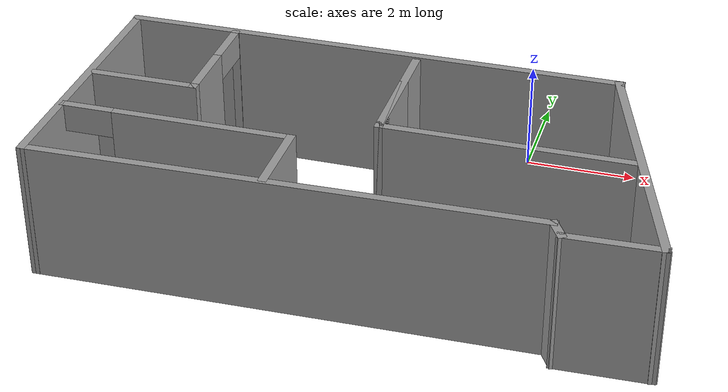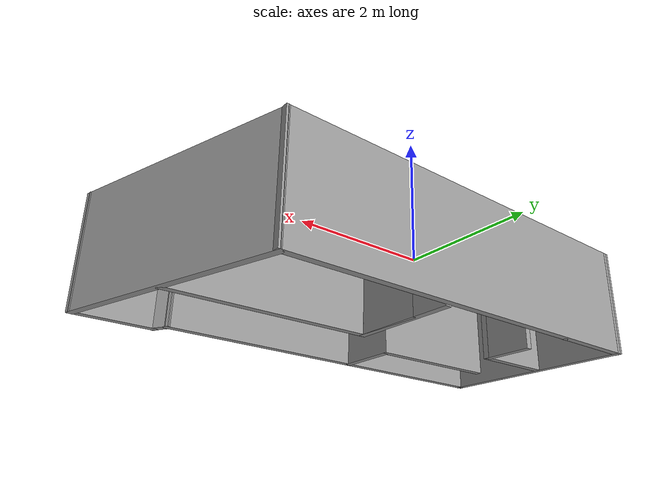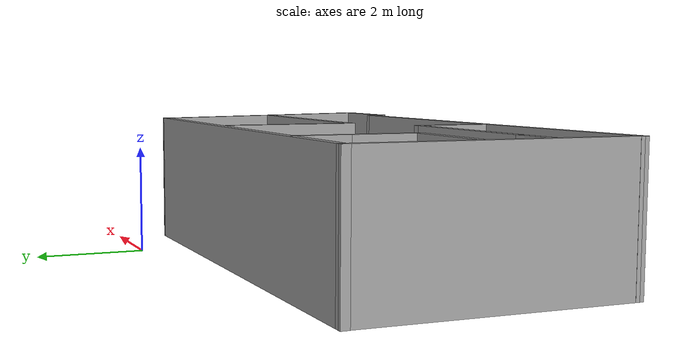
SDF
<?xml version='1.0'?>
<sdf version='1.7'>
  <model name='random_room'>
    <pose>-2.07074 -3.00778 0 0 -0 0</pose>
    <link name='Wall_0'>
      <collision name='Wall_0_Collision'>
        <geometry>
          <box>
            <size>5.23328 0.15 2.5</size>
          </box>
        </geometry>
        <pose>0 0 1.25 0 -0 0</pose>
      </collision>
      <visual name='Wall_0_Visual'>
        <pose>0 0 1.25 0 -0 0</pose>
        <geometry>
          <box>
            <size>5.23328 0.15 2.5</size>
          </box>
        </geometry>
        <material>
          <script>
            <uri>file://media/materials/scripts/gazebo.material</uri>
            <name>Gazebo/Grey</name>
          </script>
          <ambient>1 1 1 1</ambient>
        </material>
        <meta>
          <layer>0</layer>
        </meta>
      </visual>
      <pose>4.51574 -0.42222 0 0 -0 1.86828</pose>
    </link>
    <link name='Wall_1'>
      <collision name='Wall_1_Collision'>
        <geometry>
          <box>
            <size>9.22002 0.15 2.5</size>
          </box>
        </geometry>
        <pose>0 0 1.25 0 -0 0</pose>
      </collision>
      <visual name='Wall_1_Visual'>
        <pose>0 0 1.25 0 -0 0</pose>
        <geometry>
          <box>
            <size>9.22002 0.15 2.5</size>
          </box>
        </geometry>
        <material>
          <script>
            <uri>file://media/materials/scripts/gazebo.material</uri>
            <name>Gazebo/Grey</name>
          </script>
          <ambient>1 1 1 1</ambient>
        </material>
        <meta>
          <layer>0</layer>
        </meta>
      </visual>
      <pose>-0.744262 2.02778 0 0 -0 3.13939</pose>
    </link>
    <link name='Wall_10'>
      <pose>0.150738 0.64278 0 0 -0 -1.5708</pose>
      <visual name='Wall_10_Visual_0'>
        <pose>0 0 1.25 0 -0 0</pose>
        <geometry>
          <box>
            <size>2.5 0.15 2.5</size>
          </box>
        </geometry>
        <material>
          <script>
            <uri>file://media/materials/scripts/gazebo.material</uri>
            <name>Gazebo/Grey</name>
          </script>
          <ambient>1 1 1 1</ambient>
        </material>
        <meta>
          <layer>0</layer>
        </meta>
      </visual>
      <collision name='Wall_10_Collision_0'>
        <geometry>
          <box>
            <size>2.5 0.15 2.5</size>
          </box>
        </geometry>
        <pose>0 0 1.25 0 -0 0</pose>
      </collision>
      <visual name='Wall_10_Visual_1'>
        <pose>0.4275 0 1.25 0 -0 0</pose>
        <geometry>
          <box>
            <size>1.645 0.15 2.5</size>
          </box>
        </geometry>
        <material>
          <script>
            <uri>file://media/materials/scripts/gazebo.material</uri>
            <name>Gazebo/Grey</name>
          </script>
          <ambient>1 1 1 1</ambient>
        </material>
        <meta>
          <layer>0</layer>
        </meta>
      </visual>
      <collision name='Wall_10_Collision_1'>
        <geometry>
          <box>
            <size>1.645 0.15 2.5</size>
          </box>
        </geometry>
        <pose>0.4275 0 1.25 0 -0 0</pose>
      </collision>
    </link>
    <link name='Wall_11'>
      <collision name='Wall_11_Collision'>
        <geometry>
          <box>
            <size>4.5 0.15 2.5</size>
          </box>
        </geometry>
        <pose>0 0 1.25 0 -0 0</pose>
      </collision>
      <visual name='Wall_11_Visual'>
        <pose>0 0 1.25 0 -0 0</pose>
        <geometry>
          <box>
            <size>4.5 0.15 2.5</size>
          </box>
        </geometry>
        <material>
          <script>
            <uri>file://media/materials/scripts/gazebo.material</uri>
            <name>Gazebo/Grey</name>
          </script>
          <ambient>1 1 1 1</ambient>
        </material>
        <meta>
          <layer>0</layer>
        </meta>
      </visual>
      <pose>2.32574 -0.53222 0 0 -0 0</pose>
    </link>
    <link name='Wall_13'>
      <pose>-3.19926 -1.31222 0 0 -0 0</pose>
      <visual name='Wall_13_Visual_0'>
        <pose>-2.0725 0 1.25 0 -0 0</pose>
        <geometry>
          <box>
            <size>0.105 0.15 2.5</size>
          </box>
        </geometry>
        <material>
          <script>
            <uri>file://media/materials/scripts/gazebo.material</uri>
            <name>Gazebo/Grey</name>
          </script>
          <ambient>1 1 1 1</ambient>
        </material>
        <meta>
          <layer>0</layer>
        </meta>
      </visual>
      <collision name='Wall_13_Collision_0'>
        <geometry>
          <box>
            <size>0.105 0.15 2.5</size>
          </box>
        </geometry>
        <pose>-2.0725 0 1.25 0 -0 0</pose>
      </collision>
      <visual name='Wall_13_Visual_1'>
        <pose>0.5025 0 1.25 0 -0 0</pose>
        <geometry>
          <box>
            <size>3.245 0.15 2.5</size>
          </box>
        </geometry>
        <material>
          <script>
            <uri>file://media/materials/scripts/gazebo.material</uri>
            <name>Gazebo/Grey</name>
          </script>
          <ambient>1 1 1 1</ambient>
        </material>
        <meta>
          <layer>0</layer>
        </meta>
      </visual>
      <collision name='Wall_13_Collision_1'>
        <geometry>
          <box>
            <size>3.245 0.15 2.5</size>
          </box>
        </geometry>
        <pose>0.5025 0 1.25 0 -0 0</pose>
      </collision>
      <visual name='Wall_13_Visual_2'>
        <pose>-1.57 0 2.25 0 -0 0</pose>
        <geometry>
          <box>
            <size>0.9 0.15 0.5</size>
          </box>
        </geometry>
        <material>
          <script>
            <uri>file://media/materials/scripts/gazebo.material</uri>
            <name>Gazebo/Grey</name>
          </script>
          <ambient>1 1 1 1</ambient>
        </material>
        <meta>
          <layer>0</layer>
        </meta>
      </visual>
      <collision name='Wall_13_Collision_2'>
        <geometry>
          <box>
            <size>0.9 0.15 0.5</size>
          </box>
        </geometry>
        <pose>-1.57 0 2.25 0 -0 0</pose>
      </collision>
    </link>
    <link name='Wall_14'>
      <collision name='Wall_14_Collision'>
        <geometry>
          <box>
            <size>1.5 0.15 2.5</size>
          </box>
        </geometry>
        <pose>0 0 1.25 0 -0 0</pose>
      </collision>
      <visual name='Wall_14_Visual'>
        <pose>0 0 1.25 0 -0 0</pose>
        <geometry>
          <box>
            <size>1.5 0.15 2.5</size>
          </box>
        </geometry>
        <material>
          <script>
            <uri>file://media/materials/scripts/gazebo.material</uri>
            <name>Gazebo/Grey</name>
          </script>
          <ambient>1 1 1 1</ambient>
        </material>
        <meta>
          <layer>0</layer>
        </meta>
      </visual>
      <pose>-1.14926 -1.98722 0 0 -0 -1.5708</pose>
    </link>
    <link name='Wall_2'>
      <collision name='Wall_2_Collision'>
        <geometry>
          <box>
            <size>5 0.15 2.5</size>
          </box>
        </geometry>
        <pose>0 0 1.25 0 -0 0</pose>
      </collision>
      <visual name='Wall_2_Visual'>
        <pose>0 0 1.25 0 -0 0</pose>
        <geometry>
          <box>
            <size>5 0.15 2.5</size>
          </box>
        </geometry>
        <material>
          <script>
            <uri>file://media/materials/scripts/gazebo.material</uri>
            <name>Gazebo/Grey</name>
          </script>
          <ambient>1 1 1 1</ambient>
        </material>
        <meta>
          <layer>0</layer>
        </meta>
      </visual>
      <pose>-5.26926 -0.38722 0 0 -0 -1.5708</pose>
    </link>
    <link name='Wall_3'>
      <collision name='Wall_3_Collision'>
        <geometry>
          <box>
            <size>8.93251 0.15 2.5</size>
          </box>
        </geometry>
        <pose>0 0 1.25 0 -0 0</pose>
      </collision>
      <visual name='Wall_3_Visual'>
        <pose>0 0 1.25 0 -0 0</pose>
        <geometry>
          <box>
            <size>8.93251 0.15 2.5</size>
          </box>
        </geometry>
        <material>
          <script>
            <uri>file://media/materials/scripts/gazebo.material</uri>
            <name>Gazebo/Grey</name>
          </script>
          <ambient>1 1 1 1</ambient>
        </material>
        <meta>
          <layer>0</layer>
        </meta>
      </visual>
      <pose>-0.879262 -2.70722 0 0 -0 0.023913</pose>
    </link>
    <link name='Wall_4'>
      <collision name='Wall_4_Collision'>
        <geometry>
          <box>
            <size>0.5 0.15 2.5</size>
          </box>
        </geometry>
        <pose>0 0 1.25 0 -0 0</pose>
      </collision>
      <visual name='Wall_4_Visual'>
        <pose>0 0 1.25 0 -0 0</pose>
        <geometry>
          <box>
            <size>0.5 0.15 2.5</size>
          </box>
        </geometry>
        <material>
          <script>
            <uri>file://media/materials/scripts/gazebo.material</uri>
            <name>Gazebo/Grey</name>
          </script>
          <ambient>1 1 1 1</ambient>
        </material>
        <meta>
          <layer>0</layer>
        </meta>
      </visual>
      <pose>3.59824 -2.75377 0 0 -0 -1.0472</pose>
    </link>
    <link name='Wall_5'>
      <collision name='Wall_5_Collision'>
        <geometry>
          <box>
            <size>1.72589 0.15 2.5</size>
          </box>
        </geometry>
        <pose>0 0 1.25 0 -0 0</pose>
      </collision>
      <visual name='Wall_5_Visual'>
        <pose>0 0 1.25 0 -0 0</pose>
        <geometry>
          <box>
            <size>1.72589 0.15 2.5</size>
          </box>
        </geometry>
        <material>
          <script>
            <uri>file://media/materials/scripts/gazebo.material</uri>
            <name>Gazebo/Grey</name>
          </script>
          <ambient>1 1 1 1</ambient>
        </material>
        <meta>
          <layer>0</layer>
        </meta>
      </visual>
      <pose>4.47324 -2.87877 0 0 -0 0.033707</pose>
    </link>
    <link name='Wall_7'>
      <pose>-3.31926 0.91778 0 0 -0 -1.5708</pose>
      <visual name='Wall_7_Visual_0'>
        <pose>-1.0775 0 1.25 0 -0 0</pose>
        <geometry>
          <box>
            <size>0.095 0.15 2.5</size>
          </box>
        </geometry>
        <material>
          <script>
            <uri>file://media/materials/scripts/gazebo.material</uri>
            <name>Gazebo/Grey</name>
          </script>
          <ambient>1 1 1 1</ambient>
        </material>
        <meta>
          <layer>0</layer>
        </meta>
      </visual>
      <collision name='Wall_7_Collision_0'>
        <geometry>
          <box>
            <size>0.095 0.15 2.5</size>
          </box>
        </geometry>
        <pose>-1.0775 0 1.25 0 -0 0</pose>
      </collision>
      <visual name='Wall_7_Visual_1'>
        <pose>0.4975 0 1.25 0 -0 0</pose>
        <geometry>
          <box>
            <size>1.255 0.15 2.5</size>
          </box>
        </geometry>
        <material>
          <script>
            <uri>file://media/materials/scripts/gazebo.material</uri>
            <name>Gazebo/Grey</name>
          </script>
          <ambient>1 1 1 1</ambient>
        </material>
        <meta>
          <layer>0</layer>
        </meta>
      </visual>
      <collision name='Wall_7_Collision_1'>
        <geometry>
          <box>
            <size>1.255 0.15 2.5</size>
          </box>
        </geometry>
        <pose>0.4975 0 1.25 0 -0 0</pose>
      </collision>
      <visual name='Wall_7_Visual_2'>
        <pose>-0.58 0 2.25 0 -0 0</pose>
        <geometry>
          <box>
            <size>0.9 0.15 0.5</size>
          </box>
        </geometry>
        <material>
          <script>
            <uri>file://media/materials/scripts/gazebo.material</uri>
            <name>Gazebo/Grey</name>
          </script>
          <ambient>1 1 1 1</ambient>
        </material>
        <meta>
          <layer>0</layer>
        </meta>
      </visual>
      <collision name='Wall_7_Collision_2'>
        <geometry>
          <box>
            <size>0.9 0.15 0.5</size>
          </box>
        </geometry>
        <pose>-0.58 0 2.25 0 -0 0</pose>
      </collision>
    </link>
    <link name='Wall_8'>
      <collision name='Wall_8_Collision'>
        <geometry>
          <box>
            <size>2 0.15 2.5</size>
          </box>
        </geometry>
        <pose>0 0 1.25 0 -0 0</pose>
      </collision>
      <visual name='Wall_8_Visual'>
        <pose>0 0 1.25 0 -0 0</pose>
        <geometry>
          <box>
            <size>2 0.15 2.5</size>
          </box>
        </geometry>
        <material>
          <script>
            <uri>file://media/materials/scripts/gazebo.material</uri>
            <name>Gazebo/Grey</name>
          </script>
          <ambient>1 1 1 1</ambient>
        </material>
        <meta>
          <layer>0</layer>
        </meta>
      </visual>
      <pose>-4.24426 -0.13222 0 0 -0 3.14159</pose>
    </link>
    <static>1</static>
  </model>
</sdf>
